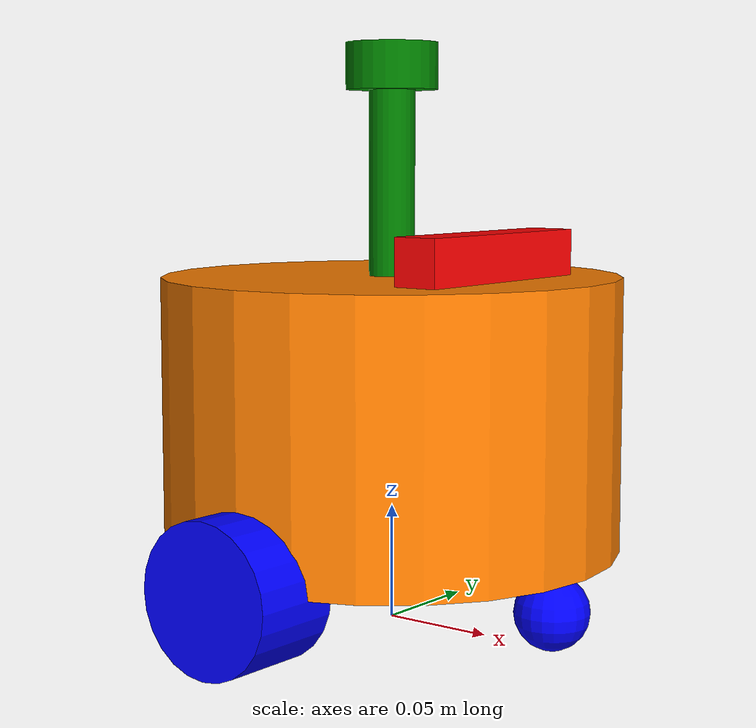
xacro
<?xml version="1.0" encoding="UTF-8"?>
<robot xmlns:xacro="http://ros.org/wiki/xacro" name="rm_robot">

<!-- 机器人底盘base -->
<xacro:include filename="$(find rm_robot_description)/urdf/base/base.urdf.xacro"/>
<!-- 机器人传感器 -->
<xacro:include filename="$(find rm_robot_description)/urdf/sensor/depth.urdf.xacro"/>
<xacro:include filename="$(find rm_robot_description)/urdf/sensor/imu.urdf.xacro"/>
<xacro:include filename="$(find rm_robot_description)/urdf/sensor/laser.urdf.xacro"/>
<!-- 机器人执行器 -->
<xacro:include filename="$(find rm_robot_description)/urdf/actuator/wheel.urdf.xacro"/>
<xacro:include filename="$(find rm_robot_description)/urdf/actuator/caster.urdf.xacro"/>
<!-- 插件配置 -->
<xacro:include filename="$(find rm_robot_description)/urdf/plugin/gz_sim_sensor_plugin.urdf.xacro"/>
<xacro:include filename="$(find rm_robot_description)/urdf/plugin/gz_sim_control_plugin.urdf.xacro"/>
<!-- 配置机器人关节 -->
<xacro:base_xacro radius="0.10" length="0.12" />
<xacro:imu_xacro xyz="0.0 0.0 0.0" />
<xacro:depth_xacro xyz="0.05 0.0 0.07" />
<xacro:laser_xacro xyz="0.0 0.0 0.11" />
<xacro:wheel_xacro wheel_name="left_wheel" xyz="0.0 0.1 -0.06" />
<xacro:wheel_xacro wheel_name="right_wheel" xyz="0.0 -0.1 -0.06" />
<xacro:caster_xacro caster_name="front_caster" xyz="0.084 0.0 -0.076" />
<xacro:caster_xacro caster_name="rear_caster" xyz="-0.084 0.0 -0.076" />
<!-- 启动插件 -->
<xacro:gz_sim_control_plugin />
<xacro:gz_sim_sensor_plugin />

</robot>

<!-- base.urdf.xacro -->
<robot xmlns:xacro="http://ros.org/wiki/xacro">
<xacro:include filename="$(find rm_robot_description)/urdf/common_inertia.urdf.xacro" />

   <xacro:macro name="base_xacro" params="radius length">
       <!-- base_link 机器人基座链接 -->
       <link name="base_link" >
            <!-- 部件外观描述 -->
            <!-- visual属于虚拟可视化部件,不参与运动学计算 -->
            <visual>
                <!-- 沿自身几何中心的偏差 -->
                <origin xyz="0.0 0.0 0.0" rpy="0.0 0.0 0.0" />
                <!-- 几何形状 -->
                <geometry>
                    <!-- 圆柱体 radius 半径/m length 高度/m -->
                    <cylinder radius="${radius}" length="${length}" />
                </geometry>
                <!-- 材质颜色透明度 -->
                <material name="yellow_base" >
                    <color rgba="1.0 0.5 0.0 1.0" />
                </material>
            </visual>
            <!-- collision 碰撞检测 ,参与运动学计算 -->
            <collision>
                <!-- 沿自身几何中心的偏差 -->
                <origin xyz="0.0 0.0 0.0" rpy="0.0 0.0 0.0" />
                <!-- 几何形状 -->
                <geometry>
                    <!-- 圆柱体 radius 半径/m length 高度/m -->
                    <cylinder radius="${radius}" length="${length}" />
                </geometry>
            </collision>
            <!-- 惯性矩阵 -->
            <xacro:cylinder_inertia m="1.0" r="${radius}" h="${length}" />
        </link>

        <!-- base_footprint 机器人基座z=0的投影 -->
        <!-- 增加惯性矩阵，避免gazebo模拟中出现警告，不会对实际的运动学计算产生影响 -->
        <link name="base_footprint" >
            <inertial>
                <mass value="0.001" />
                <inertia ixx="1e-6" ixy="0" ixz="0" iyy="1e-6" iyz="0" izz="1e-6" />
            </inertial>
        </link>

        <!-- base_link相对于base_footprint的固定关节 -->
        <joint name="base_to_base_footprint_joint" type="fixed" >
            <parent link="base_footprint" />
            <child link="base_link" />
            <origin xyz="0.0 0.0 0.092" rpy="0.0 0.0 0.0" />
        </joint>

    </xacro:macro>
</robot>

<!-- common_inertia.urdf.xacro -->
<!-- 用于存放常用的惯量矩阵 如:box cylinder sphere -->
<!-- 需要调用时，需要指定质量m，以及相关的尺寸 -->
<robot xmlns:xacro="http://ros.org/wiki/xacro">
    <xacro:macro name="box_inertia" params="m w h d">
        <inertial>
            <mass value="${m}" />
            <inertia ixx="${(m/12) * (h*h + d*d)}" ixy="0.0" ixz="0.0" iyy="${(m/12) * (w*w + d*d)}" iyz="0.0" izz="${(m/12) * (w*w + h*h)}" />
        </inertial>
    </xacro:macro>

    <xacro:macro name="cylinder_inertia" params="m r h">
        <inertial>
            <mass value="${m}" />
            <inertia ixx="${(m/12) * (3*r*r + h*h)}" ixy="0" ixz="0" iyy="${(m/12) * (3*r*r + h*h)}" iyz="0" izz="${(m/2) * (r*r)}" />
        </inertial>
    </xacro:macro>

    <xacro:macro name="sphere_inertia" params="m r">
        <inertial>
            <mass value="${m}" />
            <inertia ixx="${(2/5) * m * (r*r)}" ixy="0.0" ixz="0.0" iyy="${(2/5) * m * (r*r)}" iyz="0.0" izz="${(2/5) * m * (r*r)}" />
        </inertial>
    </xacro:macro>

</robot>

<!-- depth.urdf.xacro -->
<robot xmlns:xacro="http://ros.org/wiki/xacro">
<xacro:include filename="$(find rm_robot_description)/urdf/common_inertia.urdf.xacro" />
   <!-- 传入参数xyz,用于指定depth深度相机在机器人基座中的位置 -->
   <xacro:macro name="depth_xacro" params="xyz">
       <!-- depth 深度相机 -->
       <link name="depth_link" >
            <!-- 部件外观描述 -->
            <!-- visual属于虚拟可视化部件,不参与运动学计算 -->
            <visual>
                <!-- 沿自身几何中心的偏差 -->
                <origin xyz="0.0 0.0 0.0" rpy="0.0 0.0 0.0" />
                <!-- 几何形状 -->
                <geometry>
                    <!-- 立方体 size 长宽高/m-->
                    <box size="0.02 0.10 0.02" />
                </geometry>
                <!-- 材质颜色透明度 -->
                <material name="red_depth" >
                    <color rgba="1.0 0.0 0.0 1.0" />
                </material>
            </visual>
            <!-- collision 碰撞检测 ,参与运动学计算 -->
            <collision>
                <!-- 沿自身几何中心的偏差 -->
                <origin xyz="0.0 0.0 0.0" rpy="0.0 0.0 0.0" />
                <!-- 几何形状 -->
                <geometry>
                    <!-- 立方体 size 长宽高/m-->
                    <box size="0.02 0.10 0.02" />
                </geometry>
            </collision>
            <!-- 惯性矩阵 -->
            <xacro:box_inertia m="0.10" w="0.02" h="0.10" d="0.02" />
        </link>
        <!-- depth_link 深度相机相对于base_link的固定关节 -->
        <joint name="depth_to_base_joint" type="fixed" >
            <parent link="base_link" />
            <child link="depth_link" />
            <origin xyz="${xyz}" rpy="0.0 0.0 0.0" />
        </joint>
    </xacro:macro>
</robot>

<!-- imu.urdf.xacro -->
<robot xmlns:xacro="http://ros.org/wiki/xacro">
<xacro:include filename="$(find rm_robot_description)/urdf/common_inertia.urdf.xacro" />
   <!-- 传入参数xyz,用于指定imu 传感器在机器人基座中的位置 -->
   <xacro:macro name="imu_xacro" params="xyz">
       <!-- imu 传感器 -->
       <link name="imu_link" >
            <!-- 部件外观描述 -->
            <!-- visual属于虚拟可视化部件,不参与运动学计算 -->
            <visual>
                <!-- 沿自身几何中心的偏差 -->
                <origin xyz="0.0 0.0 0.0" rpy="0.0 0.0 0.0" />
                <!-- 几何形状 -->
                <geometry>
                    <!-- 立方体 size 长宽高/m-->
                    <box size="0.02 0.02 0.02" />
                </geometry>
                <!-- 材质颜色透明度 -->
                <material name="black_imu" >
                    <color rgba="0.0 0.0 0.0 1.0" />
                </material>
            </visual>
            <!-- collision 碰撞检测 ,参与运动学计算 -->
            <collision>
                <!-- 沿自身几何中心的偏差 -->
                <origin xyz="0.0 0.0 0.0" rpy="0.0 0.0 0.0" />
                <!-- 几何形状 -->
                <geometry>
                    <!-- 立方体 size 长宽高/m-->
                    <box size="0.02 0.02 0.02" />
                </geometry>
            </collision>
            <!-- 惯性矩阵 -->
            <xacro:box_inertia m="0.02" w="0.02" h="0.02" d="0.02" />
        </link>
        <!-- imu_link 传感器相对于base_link的固定关节 -->
        <joint name="imu_to_base_joint" type="fixed" >
            <parent link="base_link" />
            <child link="imu_link" />
            <origin xyz="${xyz}" rpy="0.0 0.0 0.0" />
        </joint>
    </xacro:macro>
</robot>

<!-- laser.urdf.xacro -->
<robot xmlns:xacro="http://ros.org/wiki/xacro">
<xacro:include filename="$(find rm_robot_description)/urdf/common_inertia.urdf.xacro" />
   <!-- 激光雷达的描述 传入参数xyz,用于指定激光雷达在机器人基座中的位置 -->
   <xacro:macro name="laser_xacro" params="xyz">
         <!-- 激光雷达杆laser_cylinder -->
        <link name="laser_cylinder_link" >
            <!-- 部件外观描述 -->
            <!-- visual属于虚拟可视化部件,不参与运动学计算 -->
            <visual>
                <!-- 沿自身几何中心的偏差 -->
                <origin xyz="0.0 0.0 0.0" rpy="0.0 0.0 0.0" />
                <!-- 几何形状 -->
                <geometry>
                    <!-- 圆柱体 radius 半径/m length 高度/m-->
                    <cylinder radius="0.01" length="0.10" />
                </geometry>
                <!-- 材质颜色透明度 -->
                <material name="green_laser_cylinder" >
                    <color rgba="0.0 0.5 0.0 1.0" />
                </material>
            </visual>
            <!-- collision 碰撞检测 ,参与运动学计算 -->
            <collision>
                <!-- 沿自身几何中心的偏差 -->
                <origin xyz="0.0 0.0 0.0" rpy="0.0 0.0 0.0" />
                <!-- 几何形状 -->
                <geometry>
                    <!-- 圆柱体 radius 半径/m length 高度/m-->
                    <cylinder radius="0.01" length="0.10" />
                </geometry>
            </collision>
            <!-- 惯性矩阵 -->
            <xacro:cylinder_inertia m="0.02" r="0.01" h="0.10" />
        </link>

        <!-- 激光雷达laser -->
        <link name="laser_link" >
            <!-- 部件外观描述 -->
            <!-- visual属于虚拟可视化部件,不参与运动学计算 -->
            <visual>
                <!-- 沿自身几何中心的偏差 -->
                <origin xyz="0.0 0.0 0.0" rpy="0.0 0.0 0.0" />
                <!-- 几何形状 -->
                <geometry>
                    <!-- 圆柱体 radius 半径/m length 高度/m-->
                    <cylinder radius="0.02" length="0.02" />
                </geometry>
                <!-- 材质颜色透明度 -->
                <material name="green_laser" >
                    <color rgba="0.0 0.5 0.0 1.0" />
                </material>
            </visual>
            <!-- collision 碰撞检测 ,参与运动学计算 -->
            <collision>
                <!-- 沿自身几何中心的偏差 -->
                <origin xyz="0.0 0.0 0.0" rpy="0.0 0.0 0.0" />
                <!-- 几何形状 -->
                <geometry>
                    <!-- 圆柱体 radius 半径/m length 高度/m-->
                    <cylinder radius="0.02" length="0.02" />
                </geometry>
                <!-- 惯性矩阵 -->
                <xacro:cylinder_inertia m="0.02" r="0.02" h="0.02" />
            </collision>
        </link>

        <!-- laser相对于laser_cylinder的固定关节 -->
        <joint name="laser_to_laser_cylinder_joint" type="fixed" >
            <parent link="laser_cylinder_link" />
            <child link="laser_link" />
            <origin xyz="0.0 0.0 0.04" rpy="0.0 0.0 0.0" />
        </joint>

        <!-- laser_cylinder相对于base_link的固定关节 -->
        <joint name="laser_cylinder_to_base_link_joint" type="fixed" >
            <parent link="base_link" />
            <child link="laser_cylinder_link" />
            <origin xyz="${xyz}" rpy="0.0 0.0 0.0" />
        </joint>

    </xacro:macro>
</robot>

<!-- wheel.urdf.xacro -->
<robot xmlns:xacro="http://ros.org/wiki/xacro">
<xacro:include filename="$(find rm_robot_description)/urdf/common_inertia.urdf.xacro" />
   <!-- 传入参数xyz,用于指定wheel在机器人基座中的位置 -->
   <!-- 传入参数wheel_name,可以创建多个wheel -->
   <xacro:macro name="wheel_xacro" params="xyz wheel_name">
       <!-- wheel -->
       <link name="${wheel_name}_link" >
            <!-- 部件外观描述 -->
            <!-- visual属于虚拟可视化部件,不参与运动学计算 -->
            <visual>
                <!-- 沿自身几何中心的偏差 -->
                <origin xyz="0.0 0.0 0.0" rpy="1.570796 0.0 0.0" />
                <!-- 几何形状 -->
                <geometry>
                    <!-- 圆柱体 radius 半径/m length 长度/m-->
                    <cylinder radius="0.032" length="0.04" />
                </geometry>
                <!-- 材质颜色透明度 -->
                <material name="blue_wheel" >
                    <color rgba="0.0 0.0 1.0 1.0" />
                </material>
            </visual>

            <!-- collision 碰撞检测 ,参与运动学计算 -->
            <collision>
                <!-- 沿自身几何中心的偏差 -->
                <origin xyz="0.0 0.0 0.0" rpy="1.570796 0.0 0.0" />
                <!-- 几何形状 -->
                <geometry>
                    <!-- 圆柱体 radius 半径/m length 长度/m-->
                    <cylinder radius="0.032" length="0.04" />
                </geometry>
            </collision>
            <!-- 惯性矩阵 -->
            <xacro:cylinder_inertia m="0.05" r="0.032" h="0.04" />
        </link>

        <!-- wheel相对于base_link的固定关节 -->
        <joint name="${wheel_name}_to_base_joint" type="continuous" >
            <parent link="base_link" />
            <child link="${wheel_name}_link" />
            <origin xyz="${xyz}" rpy="0.0 0.0 0.0" />
            <axis xyz="0.0 1.0 0.0" />
        </joint>

         <!-- 机器人关节参数，用于物理模拟 -->
         <!-- 如果想要使得模拟结果更真实，需要调整关节参数 -->
        <gazebo reference="${wheel_name}_link" >
            <mu1 value="20.0" />
            <mu2 value="20.0" />
            <kp value="1000000000.0" />
            <kd value="1.0" />
        </gazebo>
    </xacro:macro>
</robot>

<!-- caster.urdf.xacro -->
<robot xmlns:xacro="http://ros.org/wiki/xacro">
<xacro:include filename="$(find rm_robot_description)/urdf/common_inertia.urdf.xacro" />
   <!-- 传入参数xyz,用于指定caster在机器人基座中的位置 -->
   <!-- 传入参数caster_name,可以创建多个caster -->
   <xacro:macro name="caster_xacro" params="xyz caster_name">
       <!-- caster -->
       <link name="${caster_name}_link" >
            <!-- 部件外观描述 -->
            <!-- visual属于虚拟可视化部件,不参与运动学计算 -->
            <visual>
                <!-- 沿自身几何中心的偏差 -->
                <origin xyz="0.0 0.0 0.0" rpy="0.0 0.0 0.0" />
                <!-- 几何形状 -->
                <geometry>
                    <!-- 球 radius 半径/m-->
                    <sphere radius="0.016" />
                </geometry>
                <!-- 材质颜色透明度 -->
                <material name="blue_caster" >
                    <color rgba="0.0 0.0 1.0 1.0" />
                </material>
            </visual>

            <!-- collision 碰撞检测 ,参与运动学计算 -->
            <collision>
                <!-- 沿自身几何中心的偏差 -->
                <origin xyz="0.0 0.0 0.0" rpy="0.0 0.0 0.0" />
                <!-- 几何形状 -->
                <geometry>
                    <!-- 球 radius 半径/m-->
                    <sphere radius="0.016" />
                </geometry>
            </collision>
            <!-- 惯性矩阵 -->
            <xacro:sphere_inertia m="0.05" r="0.016" />
        </link>

        <!-- caster相对于base_link的固定关节 -->
        <joint name="${caster_name}_to_base_joint" type="fixed" >
            <parent link="base_link" />
            <child link="${caster_name}_link" />
            <origin xyz="${xyz}" rpy="0.0 0.0 0.0" />
        </joint>

         <!-- 机器人关节参数，用于物理模拟 -->
         <!-- 如果想要使得模拟结果更真实，需要调整关节参数 -->
        <gazebo reference="${caster_name}_link" >
            <mu1 value="0.0" />
            <mu2 value="0.0" />
            <kp value="1000000000.0" />
            <kd value="1.0" />
        </gazebo>
    </xacro:macro>
</robot>
